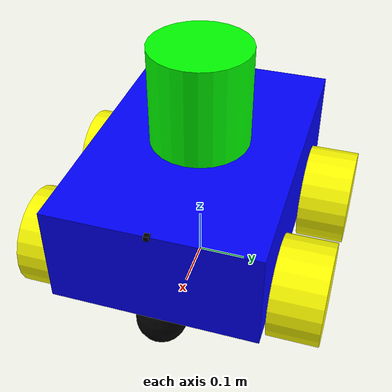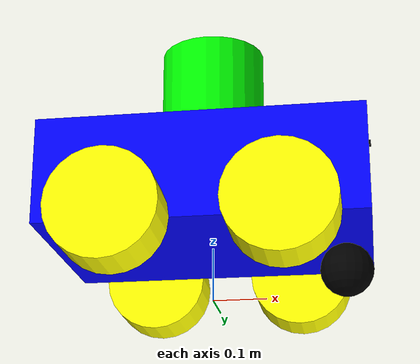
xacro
<?xml version="1.0"?>
<robot name="my_car" xmlns:xacro="http://www.ros.org/wiki/xacro">

    <xacro:include filename="common_properties.urdf.xacro"/>
    <xacro:include filename="gazebo_properties.urdf.xacro"/>
    <xacro:include filename="mobile_base.xacro"/>
    <xacro:include filename="lidar.xacro"/>
    <xacro:include filename="camera.urdf.xacro"/>
    <xacro:include filename="my_car_control.urdf.xacro"/>

</robot>

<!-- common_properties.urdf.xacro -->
<robot xmlns:xacro="http://www.ros.org/wiki/xacro">
    <material name="blue">
        <color rgba="0 0 1 1"/>
    </material>
    <material name="orange">
        <color rgba="1 0.5 0 1"/>
    </material>
    <material name="green">
        <color rgba="0 1 0 1"/>
    </material>
    <material name="red">
        <color rgba="1 0 0 1"/>
    </material>
    <material name="yellow">
        <color rgba="1 1 0 1"/>
    </material>
    <material name="black">
        <color rgba="0 0 0 1"/>
    </material>

    <xacro:macro name="box_inertia" params="m l w h xyz rpy">
        <inertial>
            <origin xyz="${xyz}" rpy="${rpy}" />
            <mass value="${m}"/>
            <inertia ixx="${(m/12)*((h*h)+(l*l))}"   ixy="0" ixz="0"
                     iyy="${(m/12)*((w*w)+(l*l))}"   iyz="0"
                     izz="${(m/12)*((w*w)+(h*h))}"/>
        </inertial>
    </xacro:macro>

    <xacro:macro name="wheel_inertia" params="m r h xyz rpy">
        <inertial>
            <origin xyz="${xyz}" rpy="${rpy}" />
            <mass value="${m}"/>
            <inertia ixx="${(m/12)*((3*r*r)+(h*h))}"   ixy="0" ixz="0"
                     iyy="${(m/12)*((3*r*r)+(h*h))}"   iyz="0"
                     izz="${(1/2)*m*r*r}"/>
        </inertial>
    </xacro:macro>

    <xacro:macro name="sphere_inertia" params="m r xyz rpy">
        <inertial>
            <origin xyz="${xyz}" rpy="${rpy}" />
            <mass value="${m}"/>
            <inertia ixx="${(2/5)*m*r*r}"   ixy="0" ixz="0"
                     iyy="${(2/5)*m*r*r}"   iyz="0"
                     izz="${(2/5)*m*r*r}"/>
        </inertial>
    </xacro:macro>
</robot>

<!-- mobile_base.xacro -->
<robot xmlns:xacro="http://www.ros.org/wiki/xacro">
    <xacro:property name="base_length" value="0.6"/>
    <xacro:property name="base_width" value="0.4"/>
    <xacro:property name="base_height" value="0.2"/>
    <xacro:property name="wheel_radius" value="0.1"/>
    <xacro:property name="wheel_length" value="0.1"/>

    <xacro:macro name="wheel_link" params="where prefix">
        <link name="${where}_${prefix}_wheel_link">
            <visual>
                <geometry>
                    <cylinder radius="${wheel_radius}" length="${wheel_length}"/>
                </geometry>
                <origin xyz="0 0 0" rpy="${pi/2} 0 0"/>
                <material name="yellow"/>
            </visual>
            <collision>
                <geometry>
                    <cylinder radius="${wheel_radius}" length="${wheel_length}"/>
                </geometry>
                <origin xyz="0 0 0" rpy="${pi/2} 0 0"/>
            </collision>
            <xacro:wheel_inertia r="${wheel_radius}" h="${wheel_length}" m="5.0" xyz="0 0 0" rpy="${pi/2} 0 0" />
        </link>
    </xacro:macro>

    <link name="base_link"/>

    <link name="main_link">
        <visual>
            <geometry>
                <box size="${base_length} ${base_width} ${base_height}"/>
            </geometry>
            <origin xyz="0 0 0.1" rpy="0 0 0"/>
            <material name="blue"/>
        </visual>
        <collision>
            <geometry>
                <box size="${base_length} ${base_width} ${base_height}"/>
            </geometry>
            <origin xyz="0 0 0.1" rpy="0 0 0"/>
        </collision>
        <xacro:box_inertia l="${base_length}" w="${base_width}" h="${base_height}" m="35" xyz="0 0 0.1" rpy="0 0 0"/>
    </link>

    <xacro:wheel_link where="back" prefix="left"/>
    <xacro:wheel_link where="back" prefix="right"/>
    <xacro:wheel_link where="front" prefix="left"/>
    <xacro:wheel_link where="front" prefix="right"/>

    <link name="front_wheel_link">
        <visual>
            <geometry>
                <sphere radius="0.05"/>
            </geometry>
            <origin xyz="0 0 0" rpy="0 0 0"/>
            <material name="black"/>
        </visual>
        <collision>
            <geometry>
                <sphere radius="0.05"/>
            </geometry>
            <origin xyz="0 0 0" rpy="0 0 0"/>
        </collision>
        <xacro:sphere_inertia m="2.0" r="0.05" xyz="0 0 0" rpy="0 0 0" />
    </link>

    <!-- JOINTS -->
    <joint name="base_footprint_to_base" type="fixed">
        <parent link="base_link"/>
        <child link="main_link"/>
        <origin xyz="0 0 ${wheel_radius}" rpy="0 0 0"/>
    </joint>

    <!-- Back wheels - these are the driving wheels -->
    <joint name="base_to_back_right_wheel_joint" type="continuous">
        <parent link="main_link"/>
        <child link="back_right_wheel_link"/>
        <origin xyz="-0.15 -${(base_width/2) + (wheel_length/2)} 0" rpy="0 0 0"/>
        <axis xyz="0 1 0"/>
    </joint>

    <joint name="base_to_back_left_wheel_joint" type="continuous">
        <parent link="main_link"/>
        <child link="back_left_wheel_link"/>
        <origin xyz="-0.15 ${(base_width/2) + (wheel_length/2)} 0" rpy="0 0 0"/>
        <axis xyz="0 1 0"/>
    </joint>

    <joint name="base_to_front_right_wheel_joint" type="continuous">
        <parent link="main_link"/>
        <child link="front_right_wheel_link"/>
        <origin xyz="0.15 -${(base_width/2) + (wheel_length/2)} 0" rpy="0 0 0"/>
        <axis xyz="0 1 0"/>
    </joint>

    <joint name="base_to_front_left_wheel_joint" type="continuous">
        <parent link="main_link"/>
        <child link="front_left_wheel_link"/>
        <origin xyz="0.15 ${(base_width/2) + (wheel_length/2)} 0" rpy="0 0 0"/>
        <axis xyz="0 1 0"/>
    </joint>

    <!-- Front caster wheel -->
    <joint name="base_to_front_wheel_joint" type="fixed">
        <parent link="main_link"/>
        <child link="front_wheel_link"/>
        <origin xyz="${base_length/2 - 0.05} 0 -${wheel_radius/2}" rpy="0 0 0"/>
    </joint>
</robot>

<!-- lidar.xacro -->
<robot xmlns:xacro="http://www.ros.org/wiki/xacro">
    <link name="lidar_link">
        <visual>
            <geometry>
                <cylinder radius="0.1" length="0.2"/>
            </geometry>
            <origin xyz="0 0 0.1" rpy="0 0 0"/>
            <material name="green"/>
        </visual>
        <collision>
            <geometry>
                <cylinder radius="0.1" length="0.2"/>
            </geometry>
            <origin xyz="0 0 0.1" rpy="0 0 0"/>
        </collision>
        <xacro:wheel_inertia r="0.1" h="0.2" m="4.0" xyz="0 0 0.1" rpy="0 0 0" />
    </link>

    <joint name="base_to_lidar_joint" type="fixed">
        <parent link="main_link"/>
        <child link="lidar_link"/>
        <origin xyz="0 0 0.2" rpy="0 0 0"/>
    </joint>

    <!-- Lidar Sensor Plugin -->
    <gazebo reference="lidar_link">
        <sensor type="ray" name="lidar_sensor">
            <pose>0 0 0 0 0 0</pose>
            <visualize>true</visualize>
            <update_rate>10</update_rate>
            <ray>
                <scan>
                    <horizontal>
                        <samples>360</samples>
                        <resolution>1</resolution>
                        <min_angle>-3.14159</min_angle>
                        <max_angle>3.14159</max_angle>
                    </horizontal>
                </scan>
                <range>
                    <min>0.5</min>
                    <max>10.0</max>
                    <resolution>0.01</resolution>
                </range>
                <noise>
                    <type>gaussian</type>
                    <mean>0.0</mean>
                    <stddev>0.01</stddev>
                </noise>
            </ray>
            <plugin name="gazebo_ros_lidar_controller" filename="libgazebo_ros_ray_sensor.so">
                <ros>
                    <namespace>/</namespace>
                    <remapping>~/out:=scan</remapping>
                </ros>
                <output_type>sensor_msgs/LaserScan</output_type>
                <frame_name>lidar_link</frame_name>
            </plugin>
        </sensor>
    </gazebo>
</robot>

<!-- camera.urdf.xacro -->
<robot xmlns:xacro="http://www.ros.org/wiki/xacro">
    <link name = "camera_link">
        <visual>
            <geometry>
                <box size="0.01 0.01 0.01"/>
            </geometry>
            <origin xyz="0 0 0" rpy="0 0 0"/>
            <material name = "black"/>
        </visual>
        <collision>
            <geometry>
                <box size="0.01 0.01 0.01"/>
            </geometry>
            <origin xyz="0 0 0" rpy="0 0 0"/>
            <material name = "black"/>
        </collision>

    </link>

    <joint name="base_to_camera_joint" type="fixed">
        <parent link="main_link"/>
        <child link="camera_link"/>
        <origin xyz="${base_length/2.0} 0 ${base_height}" rpy="0 0 0"/>
    </joint>

    <gazebo reference="camera_link">
        <material>Gazebo/Red</material>
        <sensor name="camera_sensor" type="camera">
            <pose>0 0 0 0 0 0 0</pose>
            <visualize>true</visualize>
            <update_rate>10.0</update_rate>
            <plugin name="camera_plugin" filename="libgazebo_ros_camera.so">

                <!-- Set camera name. If empty, defaults to sensor name -->
                <camera_name>car_camera</camera_name>

                <!-- Set TF frame name. If empty, defaults to link name -->
                <frame_name>camera_link</frame_name>

              </plugin>
        </sensor>

    </gazebo>

</robot>
